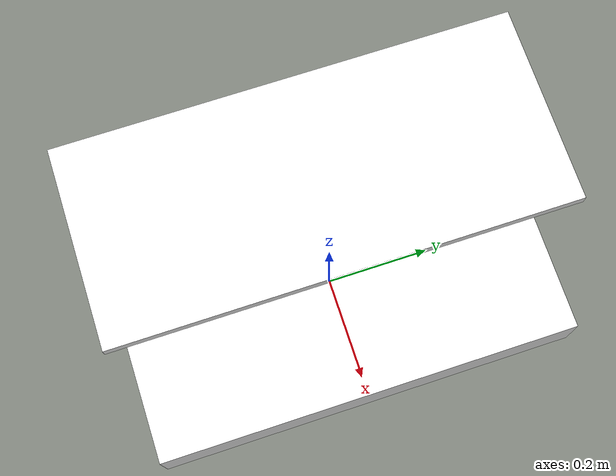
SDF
<?xml version="1.0" ?>
<sdf version="1.6">
  <model name="shelf">
    <static>true</static>
    <link name="link">
      <!-- Base Table (10cm) -->
      <collision name="base_collision">
        <pose>0 0 0.05 0 0 0</pose>
        <geometry>
          <box>
            <size>0.5 0.8 0.1</size>
          </box>
        </geometry>
      </collision>
      <visual name="base_visual">
        <pose>0 0 0.05 0 0 0</pose>
        <geometry>
          <box>
            <size>0.5 0.8 0.1</size>
          </box>
        </geometry>
        <material>
          <ambient>1 1 1 1</ambient>
          <diffuse>1 1 1 1</diffuse>
        </material>
      </visual>

      <!-- Upper Shelf (40cm height, 15cm offset as per fig 3.7) -->
      <collision name="top_collision">
        <pose>-0.075 0 0.4 0 0 0</pose> <!-- Offset horizontally to leave 15cm free at the front -->
        <geometry>
          <box>
            <size>0.35 0.8 0.02</size> <!-- 50cm deep total - 15cm free = 35cm -->
          </box>
        </geometry>
      </collision>
      <visual name="top_visual">
        <pose>-0.075 0 0.40 0 0 0</pose>
        <geometry>
          <box>
            <size>0.35 0.8 0.02</size>
          </box>
        </geometry>
        <material>
          <ambient>1 1 1 1</ambient>
          <diffuse>1 1 1 1</diffuse>
        </material>
      </visual>

      <!-- Supports -->
      <collision name="support_left">
        <pose>-0.24 0.39 0.25 0 0 0</pose>
        <geometry>
          <box>
            <size>0.02 0.02 0.3</size>
          </box>
        </geometry>
      </collision>
      <visual name="support_left_visual">
        <pose>-0.24 0.39 0.25 0 0 0</pose>
        <geometry>
          <box>
            <size>0.02 0.02 0.3</size>
          </box>
        </geometry>
        <material>
          <ambient>0.5 0.5 0.5 1</ambient>
          <diffuse>0.5 0.5 0.5 1</diffuse>
        </material>
      </visual>
      <collision name="support_right">
        <pose>-0.24 -0.39 0.25 0 0 0</pose>
        <geometry>
          <box>
            <size>0.02 0.02 0.3</size>
          </box>
        </geometry>
      </collision>
      <visual name="support_right_visual">
        <pose>-0.24 -0.39 0.25 0 0 0</pose>
        <geometry>
          <box>
            <size>0.02 0.02 0.3</size>
          </box>
        </geometry>
        <material>
          <ambient>0.5 0.5 0.5 1</ambient>
          <diffuse>0.5 0.5 0.5 1</diffuse>
        </material>
      </visual>
    </link>
  </model>
</sdf>
